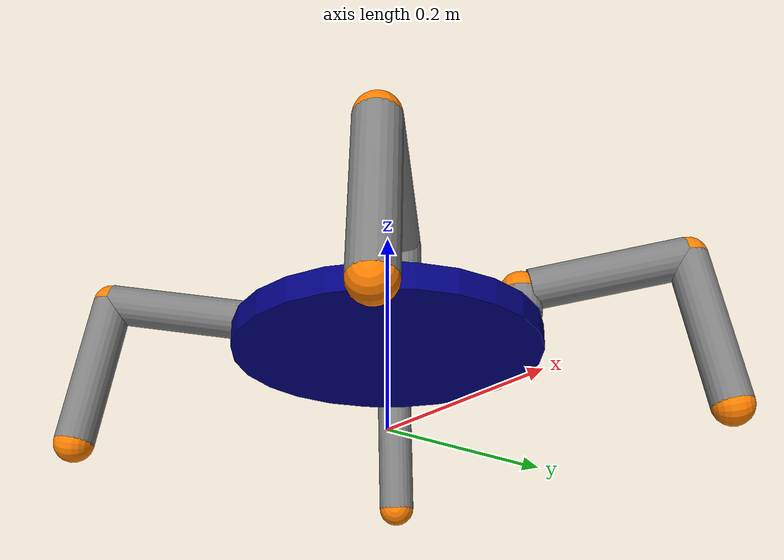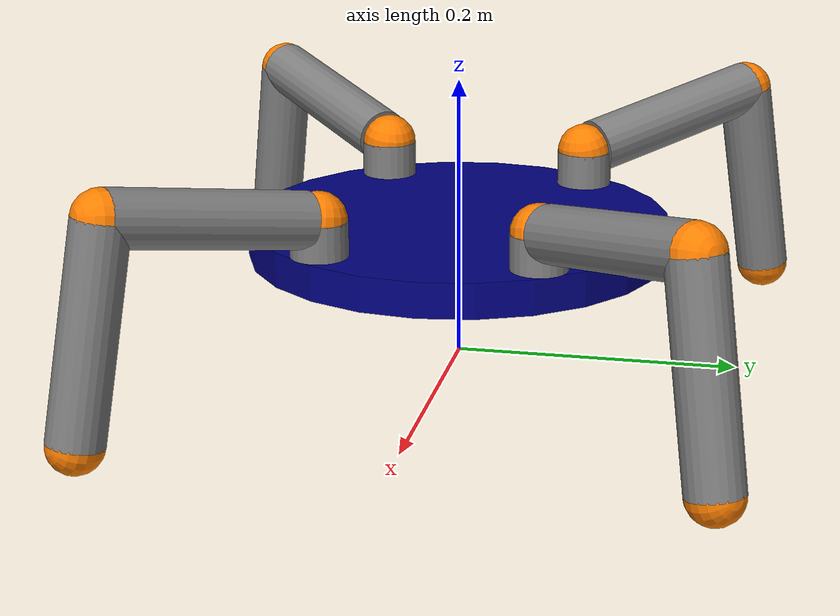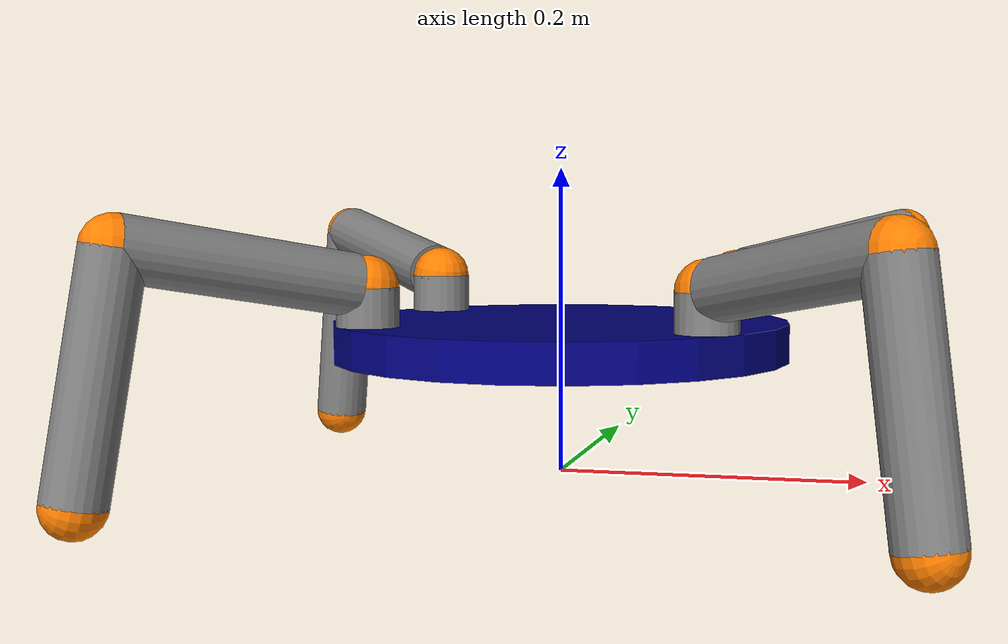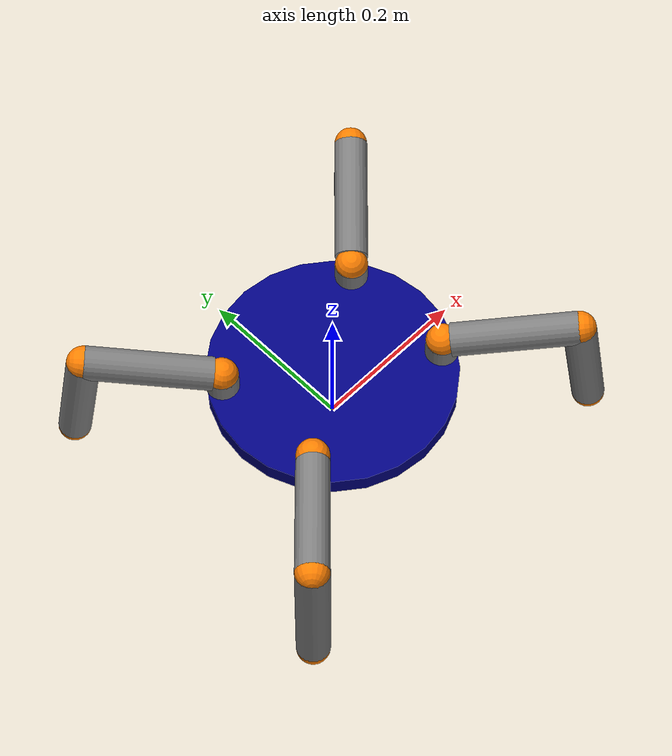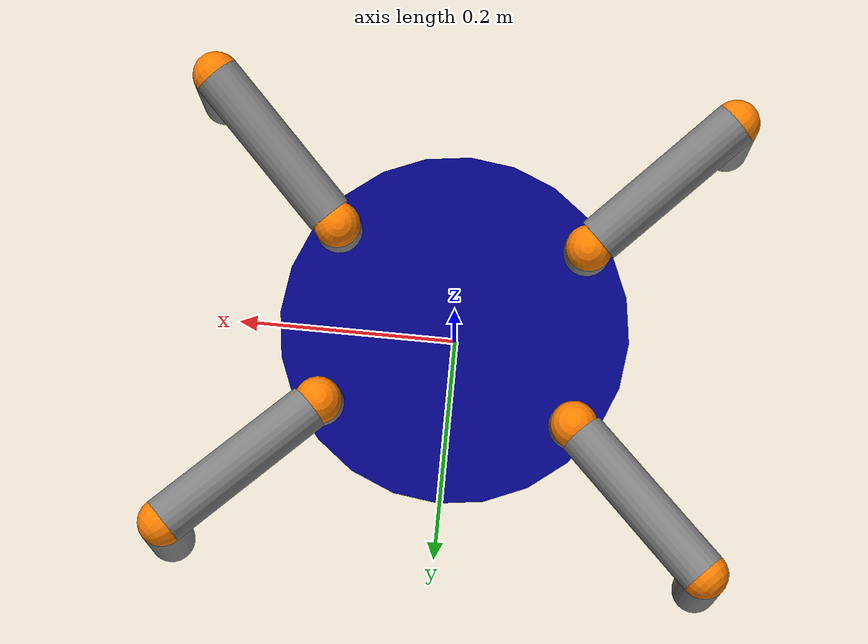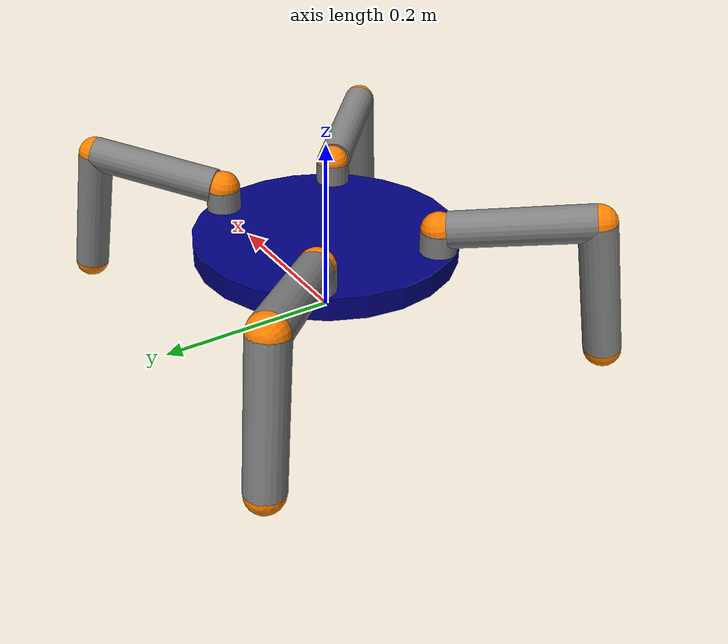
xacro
<?xml version="1.0"?>
<robot name="aracnibot" xmlns:xacro="http://www.ros.org/wiki/xacro">

    <xacro:include filename="materiales.xacro"/>
    <xacro:include filename="properties.xacro"/>
    <xacro:include filename="macros/common_properties.xacro"/>
    <xacro:include filename="macros/arm_support_link.xacro"/>
    <xacro:include filename="macros/arm_sphere_link.xacro"/>
    <xacro:include filename="macros/arm_link.xacro"/>
    <xacro:include filename="aracnibot_base.xacro"/>

</robot>

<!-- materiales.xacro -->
<robot xmlns:xacro="http://www.ros.org/wiki/xacro">

    <material name="blue">
         <color rgba="0 0 0.5 1"/>
    </material>

    <material name="grey">
        <color rgba="0.5 0.5 0.5 1"/>
    </material>

    <material name="orange">
        <color rgba="1 0.5 0 1"/>
    </material>

    <material name="yellow">
        <color rgba="1 1 0 1"/>
    </material>

</robot>

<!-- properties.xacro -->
<robot xmlns:xacro="http://www.ros.org/wiki/xacro">

    <xacro:property name="base_radius" value="0.15"/>
    <xacro:property name="base_length" value="0.025"/>
    <xacro:property name="arm_support_radius" value="0.02"/>
    <xacro:property name="arm_support_length" value="0.025"/>
    <xacro:property name="sphere_radius" value="0.02"/>
    <xacro:property name="arm_radius" value="0.02"/>
    <xacro:property name="arm_length" value="0.15"/>

</robot>

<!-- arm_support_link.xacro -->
<robot xmlns:xacro="http://www.ros.org/wiki/xacro">

    <xacro:macro name="arm_support_link" params="prefix">
        <link name="${prefix}_arm_support_link">
            <visual>
                <geometry>
                    <cylinder radius="${arm_support_radius}" length="${arm_support_length}"/>
                </geometry>
                <origin xyz="0 0 0" rpy="0 ${pi/2.0} 0"/>
                <material name="grey"/>
            </visual>
        </link>
    </xacro:macro>

</robot>

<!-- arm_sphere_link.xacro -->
<robot xmlns:xacro="http://www.ros.org/wiki/xacro">

    <xacro:macro name="arm_sphere_link" params="prefix">
        <link name="${prefix}_arm_sphere_link">
            <visual>
                <geometry>
                    <sphere radius="${sphere_radius}"/>
                </geometry>
                <origin xyz="0 0 0" rpy="0 0 0"/>
                <material name="orange"/>
            </visual>
        </link>
    </xacro:macro>

</robot>

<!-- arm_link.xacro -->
<robot xmlns:xacro="http://www.ros.org/wiki/xacro">

    <xacro:macro name="arm_link" params="prefix">
        <link name="${prefix}_arm_link">
            <visual>
                <geometry>
                    <cylinder radius="${arm_radius}" length="${arm_length}"/>
                </geometry>
                <origin xyz="0 ${arm_length/2.0 + sphere_radius} ${-sphere_radius}" rpy="${-pi/2.0} 0 0"/>
                <material name="grey"/>
            </visual>
        </link>
    </xacro:macro>

</robot>

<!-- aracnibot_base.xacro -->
<robot xmlns:xacro="http://www.ros.org/wiki/xacro">

    <!-- //////////////////// Links //////////////////// -->

    <link name="base_link">
        <visual>
            <geometry>
                <cylinder radius="${base_radius}" length="${base_length}"/>
            </geometry>
            <origin xyz="0 0 ${-base_length/2.0}" rpy="0 0 0"/>
            <material name="blue"/>
        </visual>
    </link>

    <!-- arm support link -->

    <xacro:arm_support_link prefix="up_left"/>
    <xacro:arm_support_link prefix="up_right"/>
    <xacro:arm_support_link prefix="down_left"/>
    <xacro:arm_support_link prefix="down_right"/>

    <!-- arm sphere link -->

    <xacro:arm_sphere_link prefix="first_up_left"/>
    <xacro:arm_sphere_link prefix="first_up_right"/>
    <xacro:arm_sphere_link prefix="first_down_left"/>
    <xacro:arm_sphere_link prefix="first_down_right"/>
    <xacro:arm_sphere_link prefix="second_up_left"/>
    <xacro:arm_sphere_link prefix="second_up_right"/>
    <xacro:arm_sphere_link prefix="second_down_left"/>
    <xacro:arm_sphere_link prefix="second_down_right"/>
    <xacro:arm_sphere_link prefix="foot_up_left"/>
    <xacro:arm_sphere_link prefix="foot_up_right"/>
    <xacro:arm_sphere_link prefix="foot_down_left"/>
    <xacro:arm_sphere_link prefix="foot_down_right"/>

    <!-- arm link -->

    <xacro:arm_link prefix="first_up_left"/>
    <xacro:arm_link prefix="first_up_right"/>
    <xacro:arm_link prefix="first_down_left"/>
    <xacro:arm_link prefix="first_down_right"/>
    <xacro:arm_link prefix="second_up_left"/>
    <xacro:arm_link prefix="second_up_right"/>
    <xacro:arm_link prefix="second_down_left"/>
    <xacro:arm_link prefix="second_down_right"/>

    <link name="base_footprint"/>

    <!-- //////////////////// Joints //////////////////// -->

    <joint name="base_joint" type="fixed">
        <parent link="base_footprint"/>
        <child link="base_link"/>
        <origin xyz="0 0 ${base_length * 4}" rpy="0 0 0"/>
    </joint>

    <!-- base support -->

    <joint name="base_up_left_arm_support_joint" type="revolute">
        <parent link="base_link"/>
        <child link="up_left_arm_support_link"/>
        <origin xyz="${base_radius/1.4} ${base_radius/2.0} ${arm_support_length/2.0}" rpy="0 ${-pi/2.0} ${-45*(pi/180)}"/>
        <limit lower="${-20*(pi/180)}" upper="${20*(pi/180)}" effort="100" velocity="100"/>
    </joint>

    <joint name="base_up_right_arm_support_joint" type="revolute">
        <parent link="base_link"/>
        <child link="up_right_arm_support_link"/>
        <origin xyz="${base_radius/1.4} ${-base_radius/2.0} ${arm_support_length/2.0}" rpy="0 ${-pi/2.0} ${-135*(pi/180)}"/>
        <limit lower="${-20*(pi/180)}" upper="${20*(pi/180)}" effort="100" velocity="100"/>
    </joint>

    <joint name="base_down_left_arm_support_joint" type="revolute">
        <parent link="base_link"/>
        <child link="down_left_arm_support_link"/>
        <origin xyz="${-base_radius/1.4} ${base_radius/2.0} ${arm_support_length/2.0}" rpy="0 ${-pi/2.0} ${45*(pi/180)}"/>
        <limit lower="${-20*(pi/180)}" upper="${20*(pi/180)}" effort="100" velocity="100"/>
    </joint>

    <joint name="base_down_right_arm_support_joint" type="revolute">
        <parent link="base_link"/>
        <child link="down_right_arm_support_link"/>
        <origin xyz="${-base_radius/1.4} ${-base_radius/2.0} ${arm_support_length/2.0}" rpy="0 ${-pi/2.0} ${135*(pi/180)}"/>
        <limit lower="${-20*(pi/180)}" upper="${20*(pi/180)}" effort="100" velocity="100"/>
    </joint>

    <!-- first Spheres -->

    <joint name="up_left_arm_support_first_up_left_arm_sphere_joint" type="revolute">
        <parent link="up_left_arm_support_link"/>
        <child link="first_up_left_arm_sphere_link"/>
        <origin xyz="${arm_support_length/2.0} 0 0" rpy="${10*(pi/180)} ${pi/2.0} 0"/>
        <limit lower="0" upper="${60*(pi/180)}" effort="100" velocity="100"/>
    </joint>

    <joint name="up_right_arm_support_first_up_right_arm_sphere_joint" type="revolute">
        <parent link="up_right_arm_support_link"/>
        <child link="first_up_right_arm_sphere_link"/>
        <origin xyz="${arm_support_length/2.0} 0 0" rpy="${10*(pi/180)} ${pi/2.0} 0"/>
        <limit lower="0" upper="${60*(pi/180)}" effort="100" velocity="100"/>
    </joint>

    <joint name="down_left_arm_support_first_down_left_arm_sphere_joint" type="revolute">
        <parent link="down_left_arm_support_link"/>
        <child link="first_down_left_arm_sphere_link"/>
        <origin xyz="${arm_support_length/2.0} 0 0" rpy="${10*(pi/180)} ${pi/2.0} 0"/>
        <limit lower="0" upper="${60*(pi/180)}" effort="100" velocity="100"/>
    </joint>

    <joint name="down_right_arm_support_first_down_right_arm_sphere_joint" type="revolute">
        <parent link="down_right_arm_support_link"/>
        <child link="first_down_right_arm_sphere_link"/>
        <origin xyz="${arm_support_length/2.0} 0 0" rpy="${10*(pi/180)} ${pi/2.0} 0"/>
        <limit lower="0" upper="${60*(pi/180)}" effort="100" velocity="100"/>
    </joint>

    <!-- first arms -->

    <joint name="first_up_left_arm_sphere_first_up_left_arm_joint" type="fixed">
        <parent link="first_up_left_arm_sphere_link"/>
        <child link="first_up_left_arm_link"/>
        <origin xyz="0 ${-arm_support_radius/2.0} ${sphere_radius}" rpy="0 0 0"/>
    </joint>

    <joint name="first_up_right_arm_sphere_first_up_right_arm_joint" type="fixed">
        <parent link="first_up_right_arm_sphere_link"/>
        <child link="first_up_right_arm_link"/>
        <origin xyz="0 ${-arm_support_radius/2.0} ${sphere_radius}" rpy="0 0 0"/>
    </joint>

    <joint name="first_down_left_arm_sphere_first_down_left_arm_joint" type="fixed">
        <parent link="first_down_left_arm_sphere_link"/>
        <child link="first_down_left_arm_link"/>
        <origin xyz="0 ${-arm_support_radius/2.0} ${sphere_radius}" rpy="0 0 0"/>
    </joint>

    <joint name="first_down_right_arm_sphere_first_down_right_arm_joint" type="fixed">
        <parent link="first_down_right_arm_sphere_link"/>
        <child link="first_down_right_arm_link"/>
        <origin xyz="0 ${-arm_support_radius/2.0} ${sphere_radius}" rpy="0 0 0"/>
    </joint>

    <!-- second Spheres -->

    <joint name="first_up_left_arm_second_up_left_arm_sphere_joint" type="revolute">
        <parent link="first_up_left_arm_link"/>
        <child link="second_up_left_arm_sphere_link"/>
        <origin xyz="0 ${arm_length + sphere_radius} ${-arm_radius}" rpy="${-pi/2.0} 0 0"/>
        <limit lower="0" upper="${60*(pi/180)}" effort="100" velocity="100"/>
    </joint>

    <joint name="first_up_right_arm_second_up_right_arm_sphere_joint" type="revolute">
        <parent link="first_up_right_arm_link"/>
        <child link="second_up_right_arm_sphere_link"/>
        <origin xyz="0 ${arm_length + sphere_radius} ${-arm_radius}" rpy="${-pi/2.0} 0 0"/>
        <limit lower="0" upper="${60*(pi/180)}" effort="100" velocity="100"/>
    </joint>

    <joint name="first_down_left_arm_second_down_left_arm_sphere_joint" type="revolute">
        <parent link="first_down_left_arm_link"/>
        <child link="second_down_left_arm_sphere_link"/>
        <origin xyz="0 ${arm_length + sphere_radius} ${-arm_radius}" rpy="${-pi/2.0} 0 0"/>
        <limit lower="0" upper="${60*(pi/180)}" effort="100" velocity="100"/>
    </joint>

    <joint name="first_down_right_arm_second_down_right_arm_sphere_joint" type="revolute">
        <parent link="first_down_right_arm_link"/>
        <child link="second_down_right_arm_sphere_link"/>
        <origin xyz="0 ${arm_length + sphere_radius} ${-arm_radius}" rpy="${-pi/2.0} 0 0"/>
        <limit lower="0" upper="${60*(pi/180)}" effort="100" velocity="100"/>
    </joint>

    <!-- second arms -->

    <joint name="second_up_left_arm_sphere_second_up_left_arm_joint" type="fixed">
        <parent link="second_up_left_arm_sphere_link"/>
        <child link="second_up_left_arm_link"/>
        <origin xyz="0 ${-sphere_radius} ${sphere_radius}" rpy="0 0 0"/>
    </joint>

    <joint name="second_up_right_arm_sphere_second_up_right_arm_joint" type="fixed">
        <parent link="second_up_right_arm_sphere_link"/>
        <child link="second_up_right_arm_link"/>
        <origin xyz="0 ${-sphere_radius} ${sphere_radius}" rpy="0 0 0"/>
    </joint>

    <joint name="second_down_left_arm_sphere_second_down_left_arm_joint" type="fixed">
        <parent link="second_down_left_arm_sphere_link"/>
        <child link="second_down_left_arm_link"/>
        <origin xyz="0 ${-sphere_radius} ${sphere_radius}" rpy="0 0 0"/>
    </joint>

    <joint name="second_down_right_arm_sphere_second_down_right_arm_joint" type="fixed">
        <parent link="second_down_right_arm_sphere_link"/>
        <child link="second_down_right_arm_link"/>
        <origin xyz="0 ${-sphere_radius} ${sphere_radius}" rpy="0 0 0"/>
    </joint>

    <!-- Feet spheres-->

    <joint name="second_up_left_arm_foot_up_left_arm_sphere_joint" type="fixed">
        <parent link="second_up_left_arm_link"/>
        <child link="foot_up_left_arm_sphere_link"/>
        <origin xyz="0 ${arm_length + sphere_radius} ${-sphere_radius}" rpy="0 0 0"/>
    </joint>

    <joint name="second_up_right_arm_foot_up_right_arm_sphere_joint" type="fixed">
        <parent link="second_up_right_arm_link"/>
        <child link="foot_up_right_arm_sphere_link"/>
        <origin xyz="0 ${arm_length + sphere_radius} ${-sphere_radius}" rpy="0 0 0"/>
    </joint>

    <joint name="second_down_left_arm_foot_down_left_arm_sphere_joint" type="fixed">
        <parent link="second_down_left_arm_link"/>
        <child link="foot_down_left_arm_sphere_link"/>
        <origin xyz="0 ${arm_length + sphere_radius} ${-sphere_radius}" rpy="0 0 0"/>
    </joint>

    <joint name="second_down_right_arm_foot_down_right_arm_sphere_joint" type="fixed">
        <parent link="second_down_right_arm_link"/>
        <child link="foot_down_right_arm_sphere_link"/>
        <origin xyz="0 ${arm_length + sphere_radius} ${-sphere_radius}" rpy="0 0 0"/>
    </joint>

</robot>
